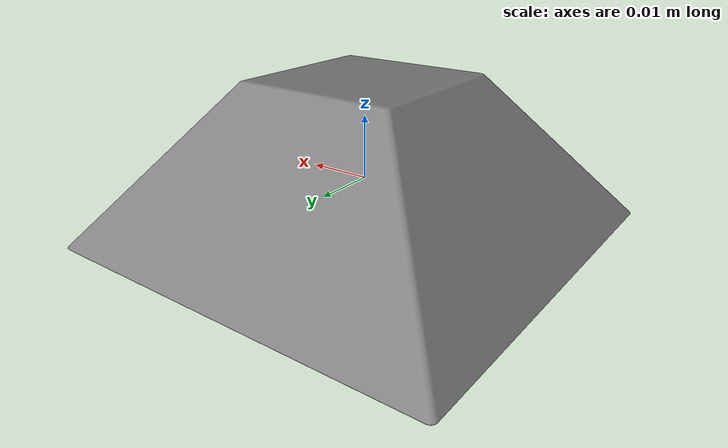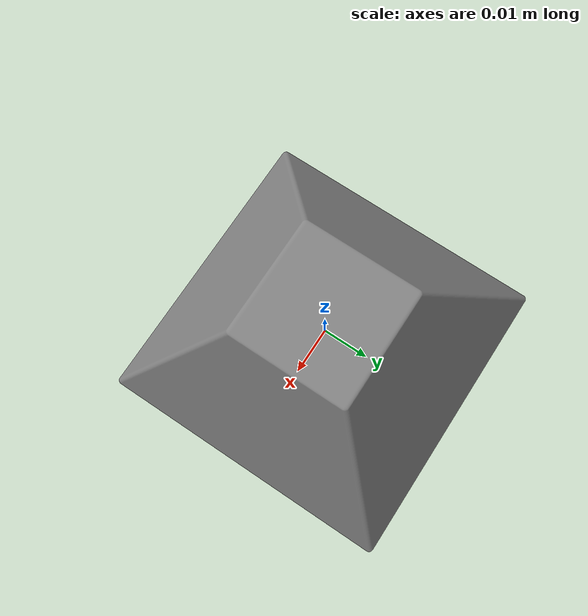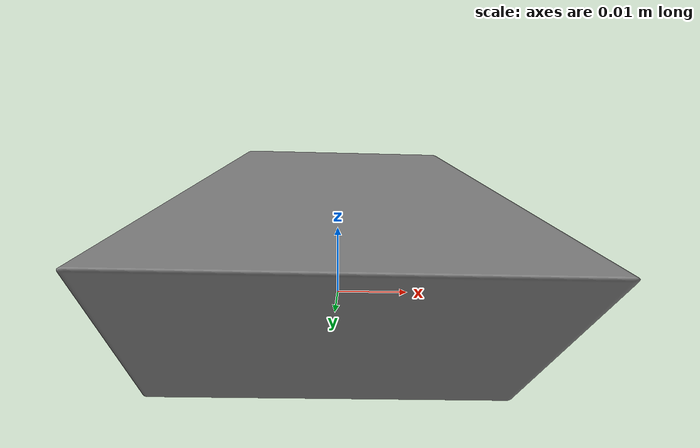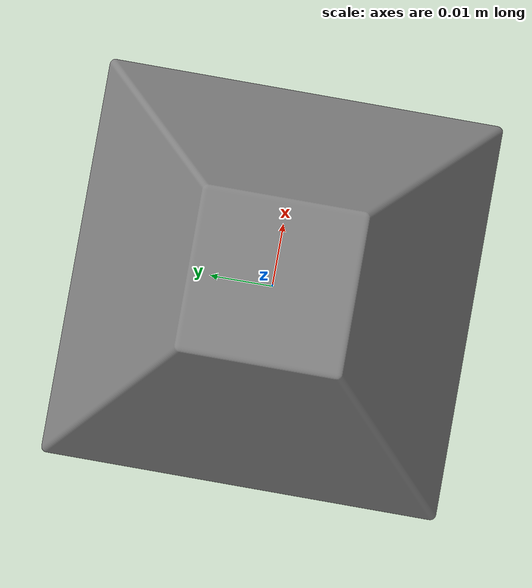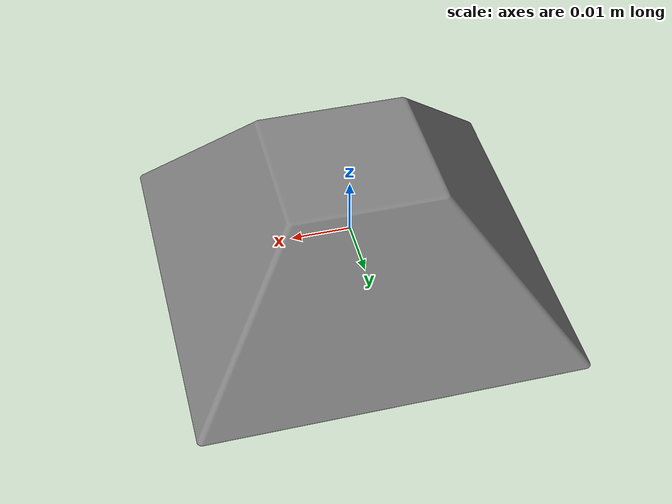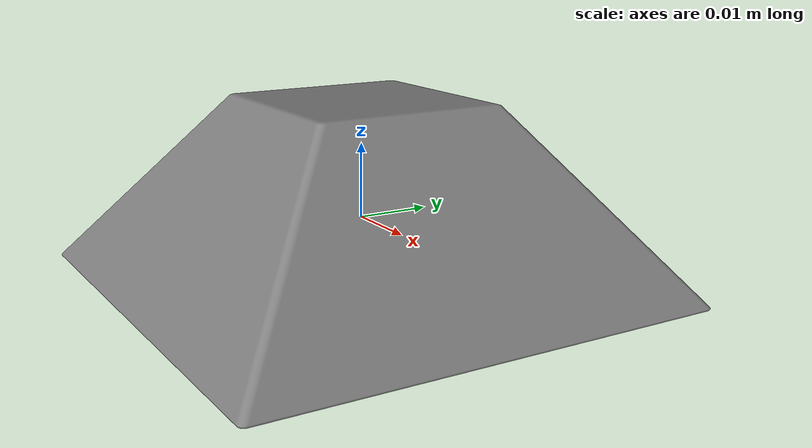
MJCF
<mujoco model="flat_pyramid">
    <compiler angle="radian"/>
    <default>
        <geom type="mesh" condim="3" margin="0.005" contype="1" conaffinity="1"/>
    </default>
    <asset>
        <mesh name="pyramid" file="flat_pyr.stl" scale="0.0013 0.0013 0.0005"/>
    </asset>
    <worldbody>
        <body name="pyramid">
            <geom mesh="pyramid" density="400"/>
        </body>
    </worldbody>
</mujoco>
